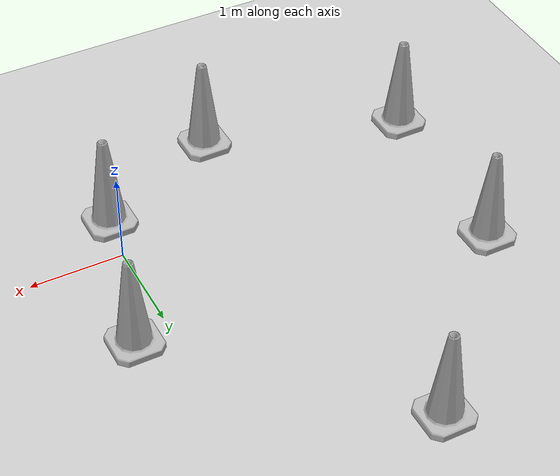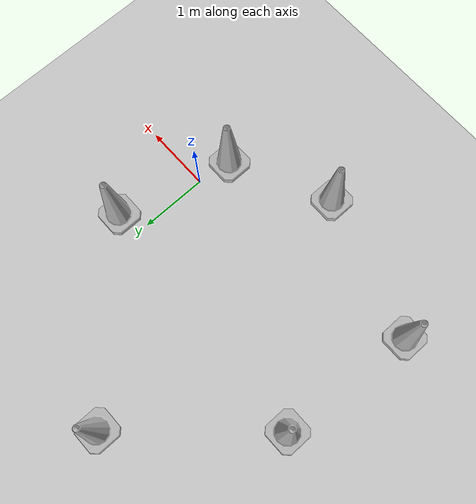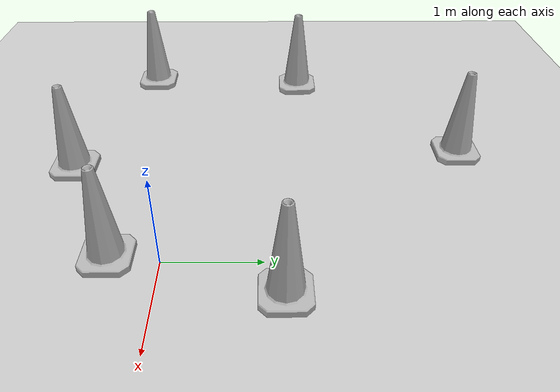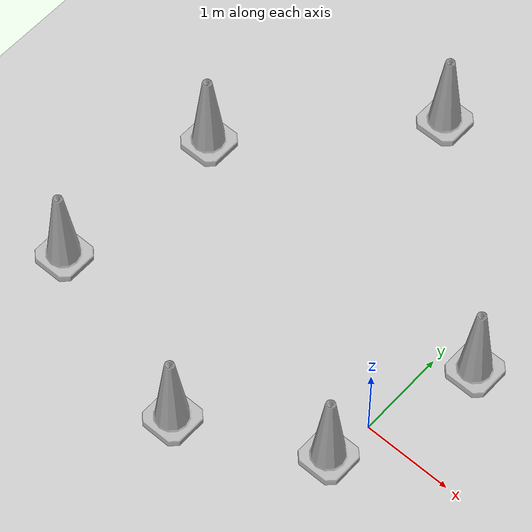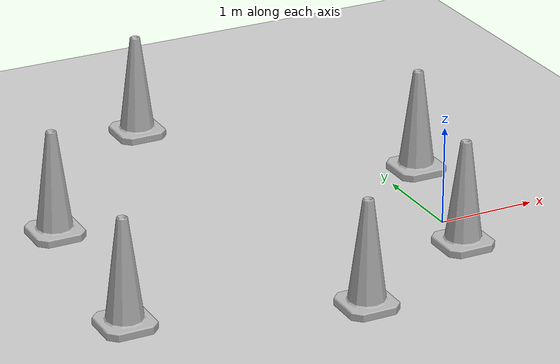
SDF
<sdf version="1.7">
 <world name="default">
  <light name="sun" type="directional">
   <pose>0 0 10 0 -0 0</pose>
   <diffuse>0.8 0.8 0.8 1</diffuse>
   <specular>0.2 0.2 0.2 1</specular>
   <attenuation>
    <range>1000</range>
    <constant>0.9</constant>
    <linear>0.01</linear>
    <quadratic>0.001</quadratic>
   </attenuation>
   <direction>-0.5 0.1 -0.9</direction>
   <spot><inner_angle>0</inner_angle><outer_angle>0</outer_angle><falloff>0</falloff></spot>
  </light>
  <model name="ground_plane">
   <static>1</static>
   <link name="link">
    <collision name="collision">
     <geometry><plane><normal>0 0 1</normal><size>100 100</size></plane></geometry>
     <surface><friction><ode><mu>100</mu><mu2>50</mu2></ode></friction></surface>
    </collision>
    <visual name="visual">
     <cast_shadows>0</cast_shadows>
     <geometry><plane><normal>0 0 1</normal><size>100 100</size></plane></geometry>
     <material>
      <script><uri>file://media/materials/scripts/gazebo.material</uri><name>Gazebo/Grey</name></script>
     </material>
    </visual>
   </link>
  </model>
  <gravity>0 0 -9.8</gravity>
  <magnetic_field>6e-06 2.3e-05 -4.2e-05</magnetic_field>
  <atmosphere type="adiabatic"/>
  <physics type="ode">
   <max_step_size>0.001</max_step_size>
   <real_time_factor>1</real_time_factor>
   <real_time_update_rate>1000</real_time_update_rate>
  </physics>
  <scene><ambient>0.4 0.4 0.4 1</ambient><background>0.7 0.7 0.7 1</background><shadows>1</shadows></scene>
  <audio><device>default</device></audio>
  <spherical_coordinates>
   <surface_model>EARTH_WGS84</surface_model>
   <latitude_deg>0</latitude_deg>
   <longitude_deg>0</longitude_deg>
   <elevation>0</elevation>
   <heading_deg>0</heading_deg>
  </spherical_coordinates>
  <model name="Construction Cone">
   <link name="link">
    <collision name="collision">
     <geometry>
      <mesh><scale>10 10 10</scale><uri>model://construction_cone/meshes/construction_cone.dae</uri></mesh>
     </geometry>
    </collision>
    <visual name="visual">
     <geometry>
      <mesh><scale>10 10 10</scale><uri>model://construction_cone/meshes/construction_cone.dae</uri></mesh>
     </geometry>
    </visual>
    <inertial>
     <inertia><ixx>1</ixx><ixy>0</ixy><ixz>0</ixz><iyy>1</iyy><iyz>0</iyz><izz>1</izz></inertia>
     <mass>1</mass>
    </inertial>
   </link>
   <pose>-0.072847 -0.513356 -0 0 -0 0</pose>
  </model>
  <model name="Construction Cone_0">
   <link name="link">
    <collision name="collision">
     <geometry>
      <mesh><scale>10 10 10</scale><uri>model://construction_cone/meshes/construction_cone.dae</uri></mesh>
     </geometry>
    </collision>
    <visual name="visual">
     <geometry>
      <mesh><scale>10 10 10</scale><uri>model://construction_cone/meshes/construction_cone.dae</uri></mesh>
     </geometry>
    </visual>
    <inertial>
     <inertia><ixx>1</ixx><ixy>0</ixy><ixz>0</ixz><iyy>1</iyy><iyz>0</iyz><izz>1</izz></inertia>
     <mass>1</mass>
    </inertial>
   </link>
   <pose>0.380636 1.18795 -0 -0 -0 -0</pose>
  </model>
  <model name="Construction Cone_1">
   <link name="link">
    <collision name="collision">
     <geometry>
      <mesh><scale>10 10 10</scale><uri>model://construction_cone/meshes/construction_cone.dae</uri></mesh>
     </geometry>
    </collision>
    <visual name="visual">
     <geometry>
      <mesh><scale>10 10 10</scale><uri>model://construction_cone/meshes/construction_cone.dae</uri></mesh>
     </geometry>
    </visual>
    <inertial>
     <inertia><ixx>1</ixx><ixy>0</ixy><ixz>0</ixz><iyy>1</iyy><iyz>0</iyz><izz>1</izz></inertia>
     <mass>1</mass>
    </inertial>
   </link>
   <pose>-1.50123 -1.21349 -1e-05 0 -0 0</pose>
  </model>
  <model name="Construction Cone_2">
   <link name="link">
    <collision name="collision">
     <geometry>
      <mesh><scale>10 10 10</scale><uri>model://construction_cone/meshes/construction_cone.dae</uri></mesh>
     </geometry>
    </collision>
    <visual name="visual">
     <geometry>
      <mesh><scale>10 10 10</scale><uri>model://construction_cone/meshes/construction_cone.dae</uri></mesh>
     </geometry>
    </visual>
    <inertial>
     <inertia><ixx>1</ixx><ixy>0</ixy><ixz>0</ixz><iyy>1</iyy><iyz>0</iyz><izz>1</izz></inertia>
     <mass>1</mass>
    </inertial>
   </link>
   <pose>-3.45652 1.46513 -0 0 -0 0</pose>
  </model>
  <model name="Construction Cone_3">
   <link name="link">
    <collision name="collision">
     <geometry>
      <mesh><scale>10 10 10</scale><uri>model://construction_cone/meshes/construction_cone.dae</uri></mesh>
     </geometry>
    </collision>
    <visual name="visual">
     <geometry>
      <mesh><scale>10 10 10</scale><uri>model://construction_cone/meshes/construction_cone.dae</uri></mesh>
     </geometry>
    </visual>
    <inertial>
     <inertia><ixx>1</ixx><ixy>0</ixy><ixz>0</ixz><iyy>1</iyy><iyz>0</iyz><izz>1</izz></inertia>
     <mass>1</mass>
    </inertial>
   </link>
   <pose>-3.61205 -0.561054 -0 0 -0 0</pose>
  </model>
  <model name="Construction Cone_4">
   <link name="link">
    <collision name="collision">
     <geometry>
      <mesh><scale>10 10 10</scale><uri>model://construction_cone/meshes/construction_cone.dae</uri></mesh>
     </geometry>
    </collision>
    <visual name="visual">
     <geometry>
      <mesh><scale>10 10 10</scale><uri>model://construction_cone/meshes/construction_cone.dae</uri></mesh>
     </geometry>
    </visual>
    <inertial>
     <inertia><ixx>1</ixx><ixy>0</ixy><ixz>0</ixz><iyy>1</iyy><iyz>0</iyz><izz>1</izz></inertia>
     <mass>1</mass>
    </inertial>
   </link>
   <pose>-1.77121 3.30938 0 -0 -0 -0</pose>
  </model>
 </world>
</sdf>
